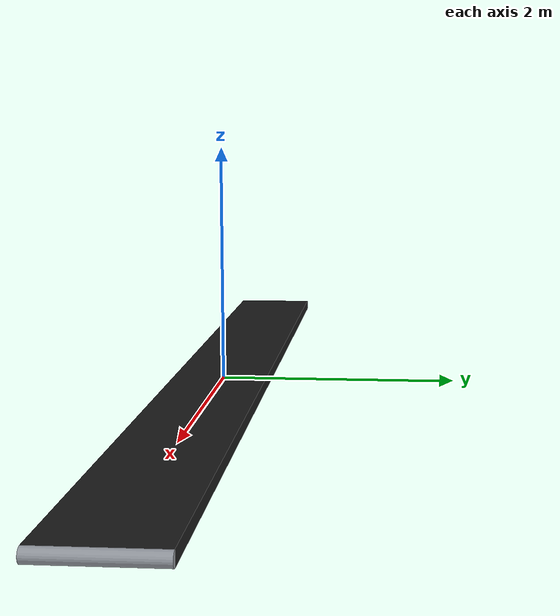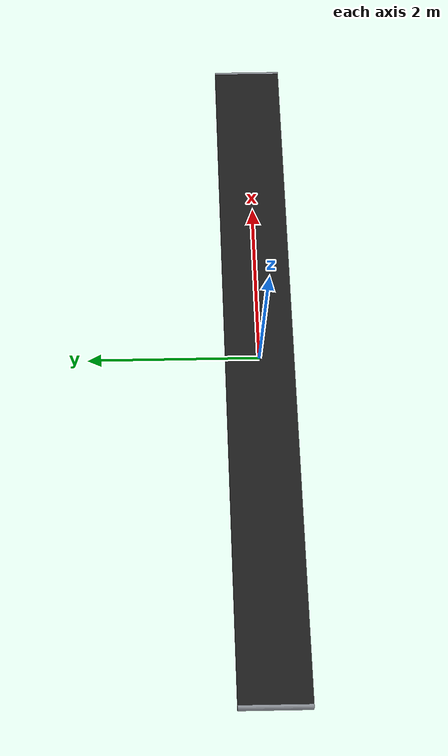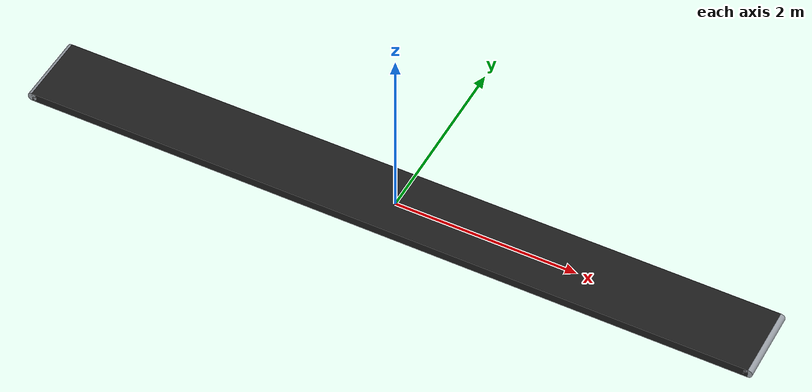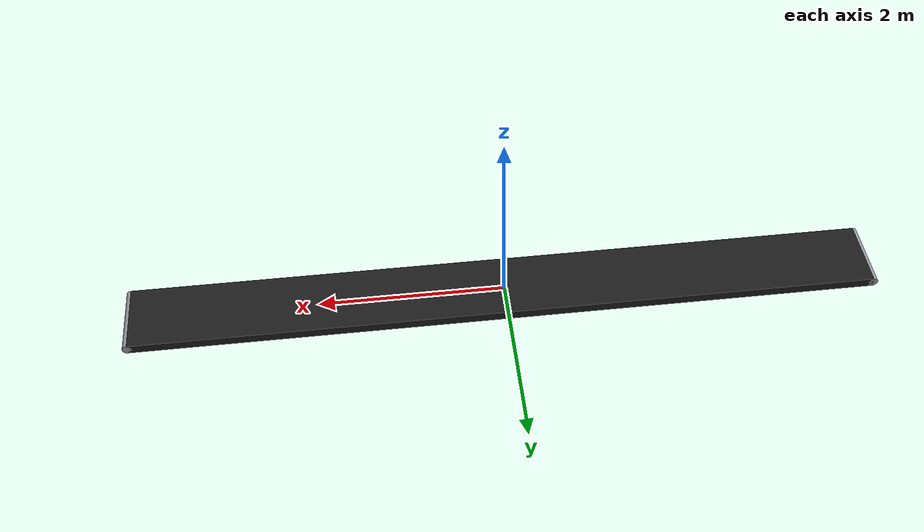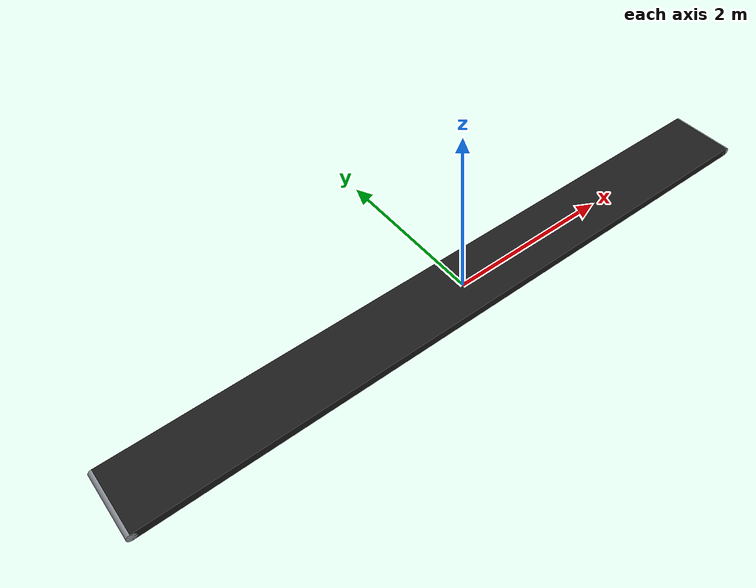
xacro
<?xml version="1.0"?>
<robot name="conveyor" xmlns:xacro="http://www.ros.org/wiki/xacro">

  <xacro:arg name="length" default="8.0"/>
  <xacro:arg name="width"  default="0.8"/>
  <xacro:property name="L" value="$(arg length)"/>
  <xacro:property name="W" value="$(arg width)"/>
  <xacro:property name="T" value="0.1"/>   <!-- do day mat bang -->

  <link name="conveyor_belt">
    <inertial>
      <mass value="10.0"/>
      <inertia ixx="1" ixy="0" ixz="0" iyy="1" iyz="0" izz="1"/>
    </inertial>
    <visual>
      <geometry><box size="${L} ${W} ${T}"/></geometry>
      <material name="belt_black"><color rgba="0.12 0.12 0.12 1"/></material>
    </visual>
    <!-- 2 con lan o 2 dau -->
    <visual>
      <origin xyz="${L/2} 0 0" rpy="${pi/2} 0 0"/>
      <geometry><cylinder radius="${T/2}" length="${W}"/></geometry>
      <material name="roller"><color rgba="0.60 0.62 0.65 1"/></material>
    </visual>
    <visual>
      <origin xyz="${-L/2} 0 0" rpy="${pi/2} 0 0"/>
      <geometry><cylinder radius="${T/2}" length="${W}"/></geometry>
      <material name="roller"><color rgba="0.60 0.62 0.65 1"/></material>
    </visual>
    <collision>
      <geometry><box size="${L} ${W} ${T}"/></geometry>
    </collision>
  </link>

  <gazebo reference="conveyor_belt">
    <mu1>0.7</mu1>
    <mu2>150</mu2>
    <fdir1>0 1 0</fdir1>
  </gazebo>

  <gazebo>
    <static>true</static>
    <plugin filename="gz-sim-track-controller-system" name="gz::sim::systems::TrackController">
      <link>conveyor_belt</link>
      <odometry_publish_frequency>1</odometry_publish_frequency>
    </plugin>
  </gazebo>

</robot>
